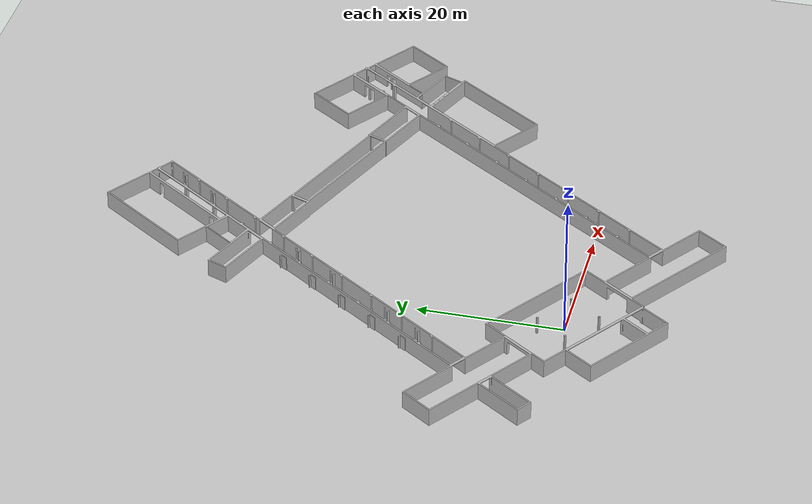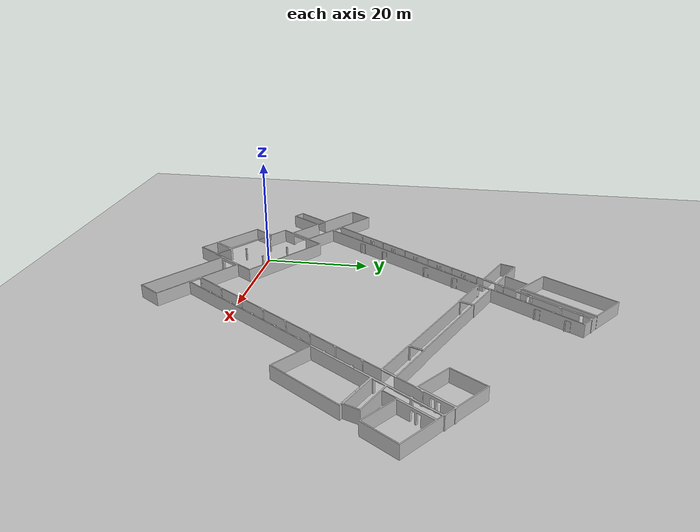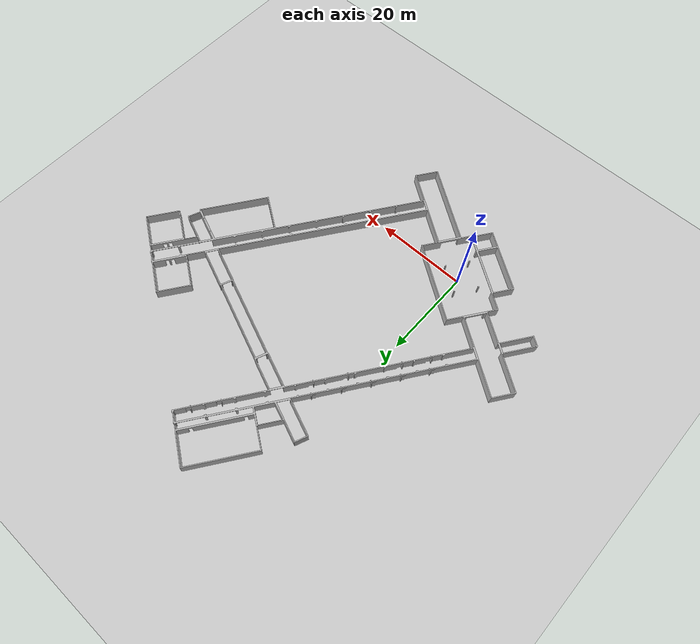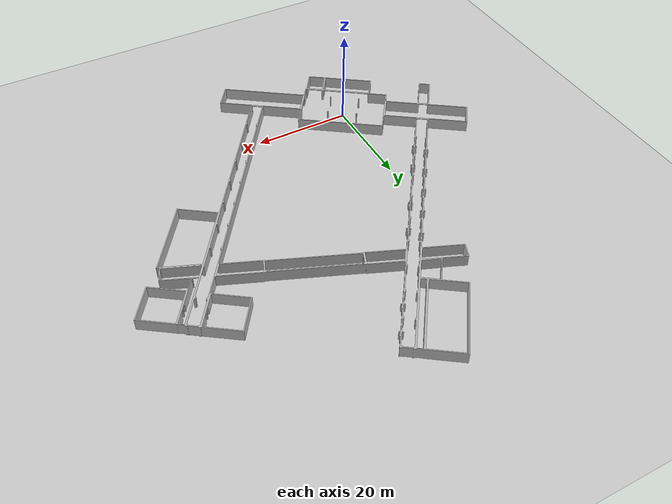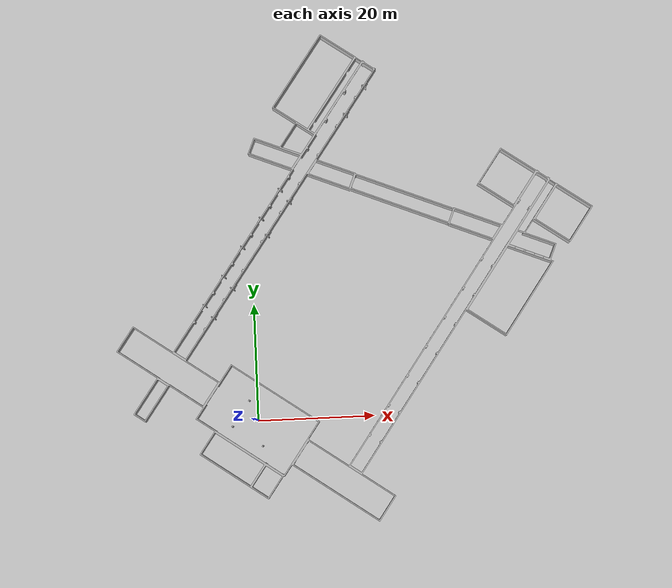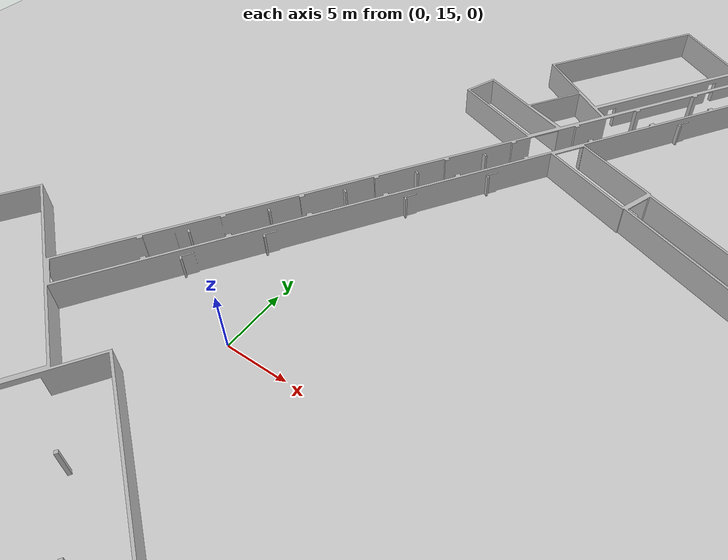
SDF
<?xml version='1.0' encoding='utf-8'?>
<sdf version="1.6">
  <world name="floorplan:icra_brsu_building_c_level_3b">
    <gravity>0 0 -9.8</gravity>
    <physics default="0" name="default_physics" type="ode">
      <max_step_size>0.001</max_step_size>
      <real_time_factor>1</real_time_factor>
      <real_time_update_rate>1000</real_time_update_rate>
    </physics>
    <scene>
      <ambient>0.6 0.6 0.6 1</ambient>
      <background>0.4 0.4 0.4 1</background>
      <shadows>false</shadows>
    </scene>
    <include>
      <uri>model://sun</uri>
    </include>
    <include>
      <uri>model://ground_plane</uri>
      <pose>0 0 0 0 0 0</pose>
    </include>
    <include>
      <uri>model://icra_brsu_building_c_level_3b</uri>
      <static>true</static>
      <pose>-0.0 0.0 0.0 0.0 0.0 0.0</pose>
    </include>

    <include>
      <name>door-instance-11</name>
      <uri>model://door</uri>
      <static>false</static>
      <pose>5.291222880221585 39.76682895871661 0.0 0.0 -0.0 2.530727415391777</pose>
      <plugin name="adversarial_joint_plugin" filename="libadversarial_joint_plugin.so">
        <joint>door:joint-door-hinge</joint>
        <uri>/home/argen/projects/frontiers/frontiers_ws/src/floorplan_gazebo_plugins/config/keyframes_door_10.json</uri>
      </plugin>
    </include>

    <include>
      <name>door-instance-2</name>
      <uri>model://door</uri>
      <static>false</static>
      <pose>-3.576863844486187 22.83044392993724 0.0 0.0 -0.0 -0.6108652381980157</pose>
      <plugin name="dynamic_joint_pluginss" filename="libdynamic_joint_plugin.so">
        <joint>door:joint-door-hinge</joint>
        <uri>/home/argen/projects/frontiers/frontiers_ws/src/floorplan_gazebo_plugins/config/keyframes_door_1.json</uri>
      </plugin>
    </include>

    <include>
      <name>door-instance-8</name>
      <uri>model://door</uri>
      <static>false</static>
      <pose>-1.5916943559909507 29.937004427248695 0.0 0.0 -0.0 2.530727415391777</pose>
      <plugin name="dynamic_joint_pluginss" filename="libdynamic_joint_plugin.so">
        <joint>door:joint-door-hinge</joint>
        <uri>/home/argen/projects/frontiers/frontiers_ws/src/floorplan_gazebo_plugins/config/keyframes_door_7.json</uri>
      </plugin>
    </include>

    <include>
      <name>door-instance-10</name>
      <uri>model://door</uri>
      <static>false</static>
      <pose>-8.474611592203491 20.107179895780778 0.0 0.0 -0.0 2.530727415391777</pose>
      <plugin name="dynamic_joint_pluginss" filename="libdynamic_joint_plugin.so">
        <joint>door:joint-door-hinge</joint>
        <uri>/home/argen/projects/frontiers/frontiers_ws/src/floorplan_gazebo_plugins/config/keyframes_door_9.json</uri>
      </plugin>
    </include>

    <include>
      <name>door-instance-7</name>
      <uri>model://door</uri>
      <static>false</static>
      <pose>1.8497642621153254 34.851916692982655 0.0 0.0 -0.0 2.530727415391777</pose>
      <plugin name="dynamic_joint_pluginss" filename="libdynamic_joint_plugin.so">
        <joint>door:joint-door-hinge</joint>
        <uri>/home/argen/projects/frontiers/frontiers_ws/src/floorplan_gazebo_plugins/config/keyframes_door_6.json</uri>
      </plugin>
    </include>

    <include>
      <name>door-instance-3</name>
      <uri>model://door</uri>
      <static>false</static>
      <pose>2.7324769553753026 31.841116417116158 0.0 0.0 -0.0 -0.6108652381980157</pose>
      <plugin name="dynamic_joint_pluginss" filename="libdynamic_joint_plugin.so">
        <joint>door:joint-door-hinge</joint>
        <uri>/home/argen/projects/frontiers/frontiers_ws/src/floorplan_gazebo_plugins/config/keyframes_door_2.json</uri>
      </plugin>
    </include>

    <include>
      <name>door-instance-6</name>
      <uri>model://door</uri>
      <static>false</static>
      <pose>6.747512009832617 37.57518072713912 0.0 0.0 -0.0 -0.6108652381980157</pose>
      <plugin name="dynamic_joint_pluginss" filename="libdynamic_joint_plugin.so">
        <joint>door:joint-door-hinge</joint>
        <uri>/home/argen/projects/frontiers/frontiers_ws/src/floorplan_gazebo_plugins/config/keyframes_door_5.json</uri>
      </plugin>
    </include>

    <include>
      <name>door-instance-4</name>
      <uri>model://door</uri>
      <static>false</static>
      <pose>17.186603151421643 52.48374793319879 0.0 0.0 -0.0 -0.6108652381980157</pose>
      <plugin name="dynamic_joint_pluginss" filename="libdynamic_joint_plugin.so">
        <joint>door:joint-door-hinge</joint>
        <uri>/home/argen/projects/frontiers/frontiers_ws/src/floorplan_gazebo_plugins/config/keyframes_door_3.json</uri>
      </plugin>
    </include>

    <include>
      <name>door-instance-9</name>
      <uri>model://door</uri>
      <static>false</static>
      <pose>-5.033152974097219 25.02209216151474 0.0 0.0 -0.0 2.530727415391777</pose>
      <plugin name="dynamic_joint_pluginss" filename="libdynamic_joint_plugin.so">
        <joint>door:joint-door-hinge</joint>
        <uri>/home/argen/projects/frontiers/frontiers_ws/src/floorplan_gazebo_plugins/config/keyframes_door_8.json</uri>
      </plugin>
    </include>

    <include>
      <name>door-instance-5</name>
      <uri>model://door</uri>
      <static>false</static>
      <pose>20.628061769527907 57.398660198932745 0.0 0.0 -0.0 -0.6108652381980157</pose>
      <plugin name="dynamic_joint_pluginss" filename="libdynamic_joint_plugin.so">
        <joint>door:joint-door-hinge</joint>
        <uri>/home/argen/projects/frontiers/frontiers_ws/src/floorplan_gazebo_plugins/config/keyframes_door_4.json</uri>
      </plugin>
    </include>

    <include>
      <name>door-instance-1</name>
      <uri>model://door</uri>
      <static>false</static>
      <pose>-7.018322462592461 17.91553166420328 0.0 0.0 -0.0 -0.6108652381980157</pose>
      <plugin name="dynamic_joint_pluginss" filename="libdynamic_joint_plugin.so">
        <joint>door:joint-door-hinge</joint>
        <uri>/home/argen/projects/frontiers/frontiers_ws/src/floorplan_gazebo_plugins/config/keyframes_door_0.json</uri>
      </plugin>
    </include>

  </world>
</sdf>

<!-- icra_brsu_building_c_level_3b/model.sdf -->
<sdf version="1.6">
  <model name="icra_brsu_building_c_level_3b">
    <link name="link">
      <visual name="visual">
	    <geometry>
          <mesh>
            <uri>model://icra_brsu_building_c_level_3b/meshes/icra_brsu_building_c_level_3b.stl</uri>
          </mesh>
        </geometry>
      </visual>
      <collision name="collision">
        <geometry>
          <mesh>
            <uri>model://icra_brsu_building_c_level_3b/meshes/icra_brsu_building_c_level_3b.stl</uri>
          </mesh>
        </geometry>
      </collision>
    </link>
  <static>1</static>
  </model>
</sdf>

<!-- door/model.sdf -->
<sdf version='1.6'>
  <model name='door'>
    <link name='link_0'>
         <visual name='visual'>
        <pose frame=''>0 0 1 0 -0 0</pose>
        <geometry>
          <box>
            <size>0.9 0.15 2</size>
          </box>
        </geometry>
          	<material>
          <script>
            <uri>model://door/materials/scripts</uri>
            <uri>model://door/materials/textures</uri>
            <name>door</name>
          </script>
        </material>
        <cast_shadows>1</cast_shadows>
        <transparency>0</transparency>
      </visual>
      <collision name='collision'>
        <laser_retro>0</laser_retro>
        <max_contacts>10</max_contacts>
        <pose frame=''>0 0 1 0 -0 0</pose>
        <geometry>
          <box>
            <size>0.9 0.15 2</size>
          </box>
        </geometry>

      </collision>
    </link>
    <static>1</static>
    <allow_auto_disable>1</allow_auto_disable>
  </model>
</sdf>
